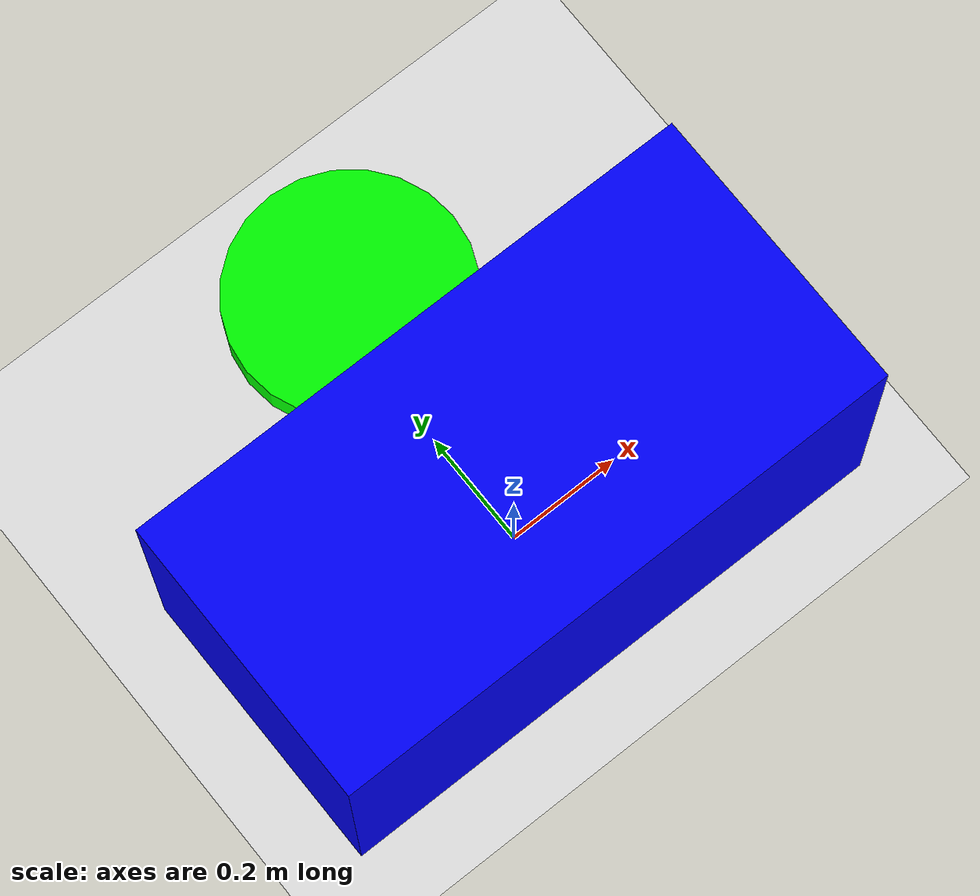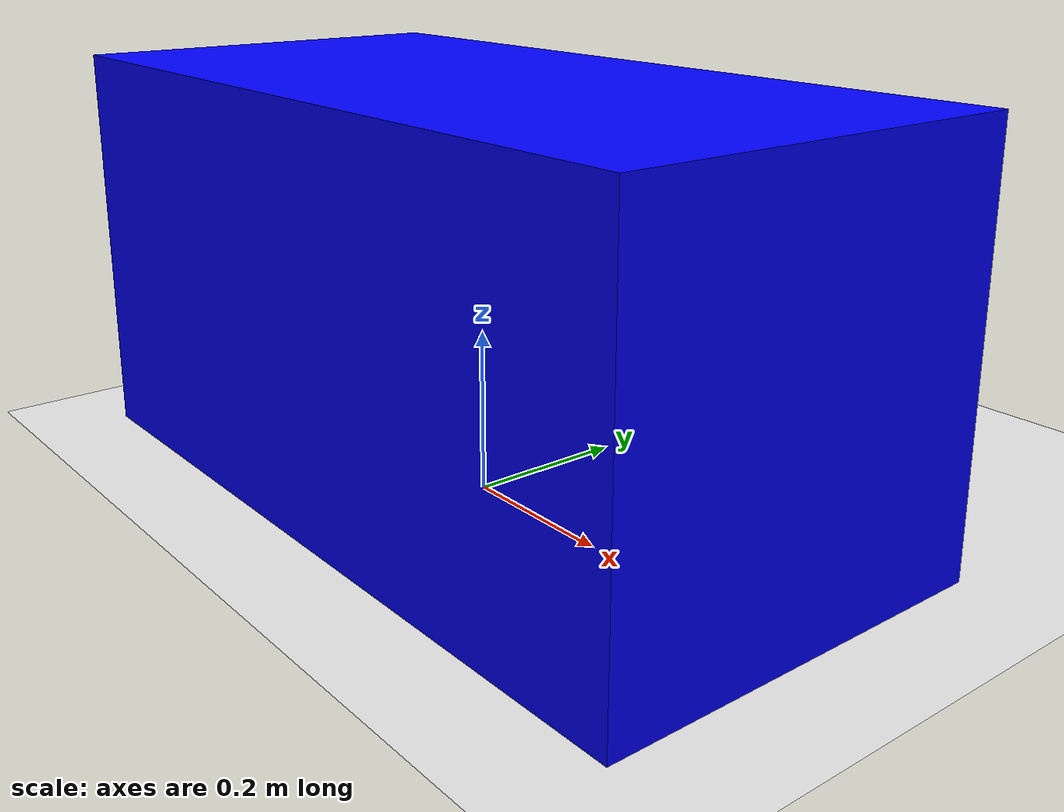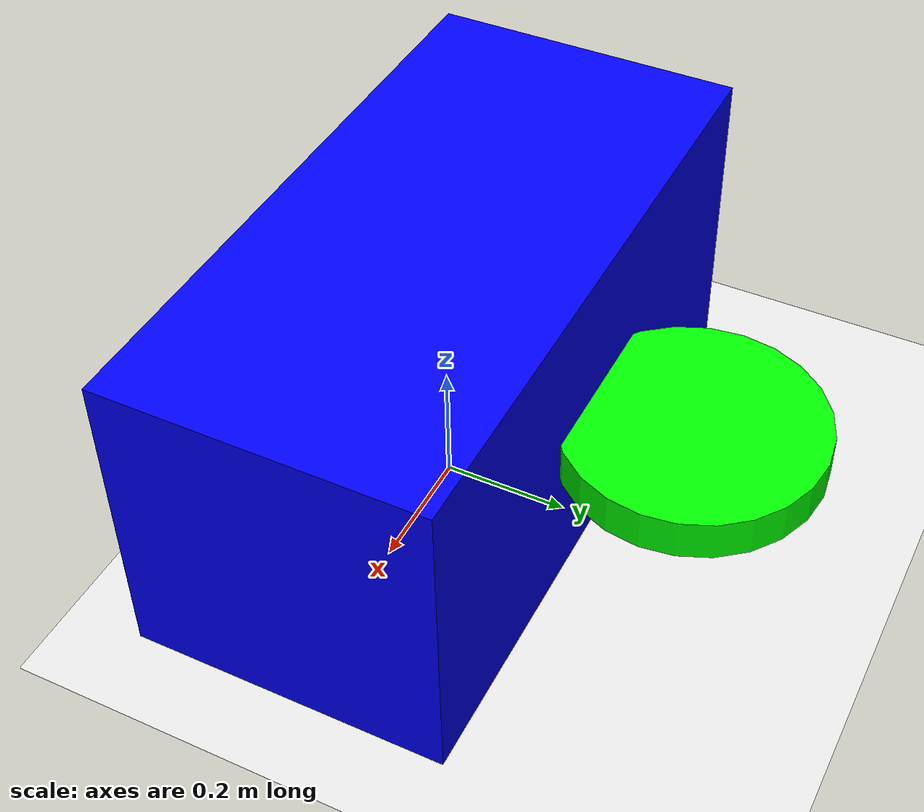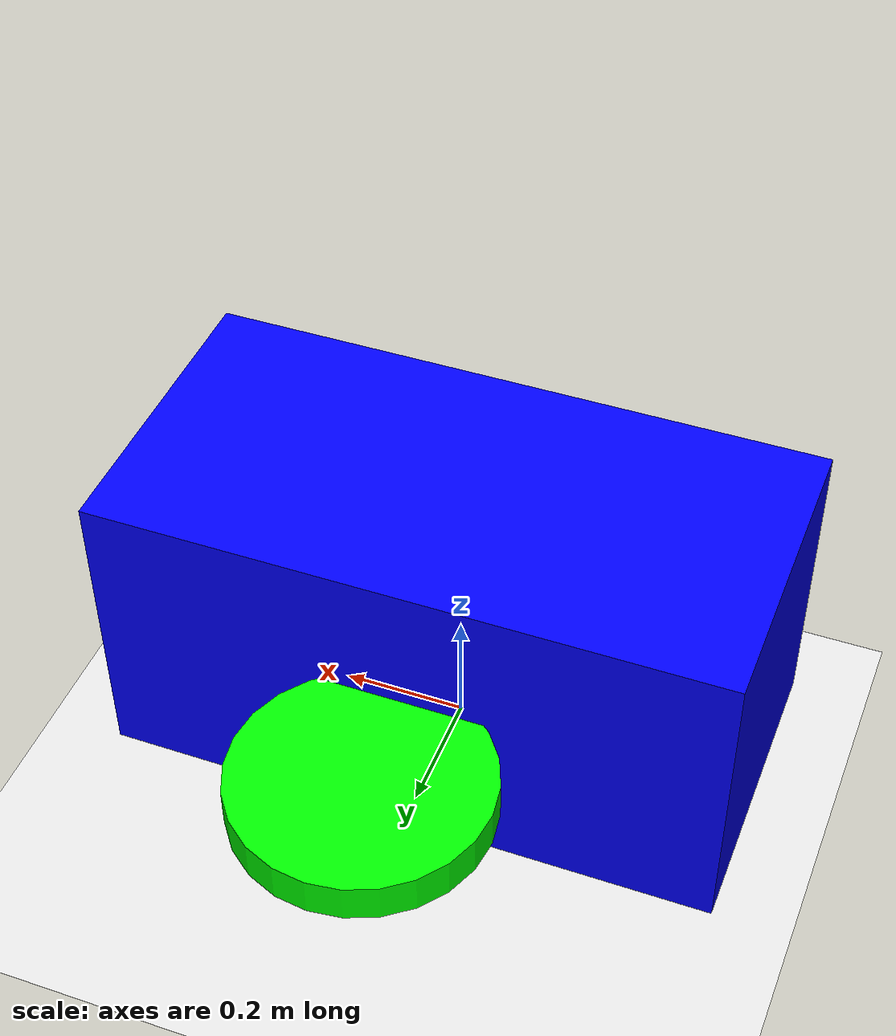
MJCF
<mujoco><worldbody><light diffuse=".5 .5 .5" pos="0 0 3" dir="0 0 -1" /><geom name="ground" type="plane" size="5 5 0.1" rgba=".9 .9 .9 1" /><body name="body"><freejoint name="root" /><geom name="torso" type="box" size="0.5 0.25 0.25" pos="0 0 0.25" rgba="0 0 1 1" mass="0.1" /><body name="wing0" pos="0 0.4 0.25" euler="0 0 90"><joint name="wing0link" type="hinge" axis="0 0 1" range="-51 51" /><geom name="wing0" type="cylinder" size="0.2 0.0325" pos="0 0 0" rgba="0 1 0 1" mass="1" /></body></body></worldbody><actuator><motor name="wing0m" joint="wing0link" gear="20" ctrllimited="true" ctrlrange="-5 5" /></actuator></mujoco>
